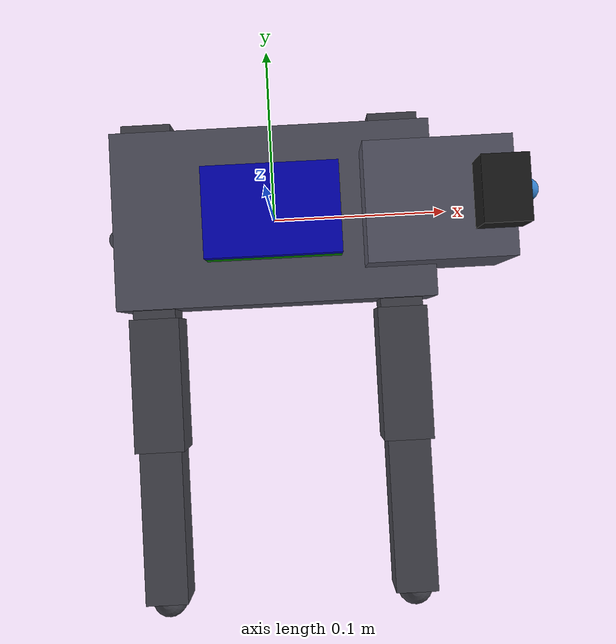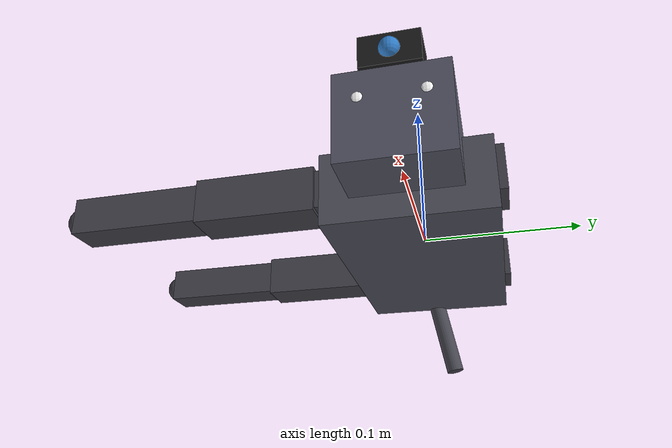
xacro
<?xml version="1.0"?>
<robot name="pidog" xmlns:xacro="http://www.ros.org/wiki/xacro" xmlns:gazebo="http://gazebosim.org/schemas/gazebo">

  <!-- ==================== Constants ==================== -->
  <!-- Body dimensions (based on actual PiDog) -->
  <xacro:property name="body_length" value="0.18" />
  <xacro:property name="body_width" value="0.10" />
  <xacro:property name="body_height" value="0.045" />
  <xacro:property name="body_mass" value="0.75" />

  <!-- Leg dimensions -->
  <xacro:property name="upper_leg_length" value="0.075" />
  <xacro:property name="lower_leg_length" value="0.085" />
  <xacro:property name="leg_width" value="0.028" />
  <xacro:property name="leg_mass" value="0.06" />

  <!-- Joint positions (shoulder/hip on body sides) -->
  <xacro:property name="hip_front_offset_x" value="0.07" />
  <xacro:property name="hip_hind_offset_x" value="-0.07" />
  <xacro:property name="hip_offset_y" value="0.055" />
  <xacro:property name="hip_offset_z" value="0.005" />

  <!-- Head dimensions -->
  <xacro:property name="head_length" value="0.08" />
  <xacro:property name="head_width" value="0.065" />
  <xacro:property name="head_height" value="0.055" />
  <xacro:property name="head_mass" value="0.15" />
  <xacro:property name="head_offset_x" value="0.09" />
  <xacro:property name="head_offset_y" value="0.00" />
  <xacro:property name="head_offset_z" value="0.02" />

  <!-- Camera dimensions (mounted above head) -->
  <xacro:property name="camera_length" value="0.025" />
  <xacro:property name="camera_width" value="0.035" />
  <xacro:property name="camera_height" value="0.020" />
  <xacro:property name="camera_mass" value="0.015" />

  <!-- Tail -->
  <xacro:property name="tail_offset_x" value="-0.09" />
  <xacro:property name="tail_offset_y" value="0.00" />
  <xacro:property name="tail_offset_z" value="0.008" />
  <xacro:property name="tail_length" value="0.08" />
  <xacro:property name="tail_mass" value="0.015" />

  <!-- Electronics -->
  <xacro:property name="rpi_length" value="0.075" />
  <xacro:property name="rpi_width" value="0.050" />
  <xacro:property name="rpi_height" value="0.010" />
  <xacro:property name="rpi_mass" value="0.045" />

  <xacro:property name="hat_length" value="0.075" />
  <xacro:property name="hat_width" value="0.050" />
  <xacro:property name="hat_height" value="0.008" />
  <xacro:property name="hat_mass" value="0.022" />

  <!-- Colors -->
  <xacro:property name="body_color" value="0.30 0.30 0.35 1.0" />
  <xacro:property name="leg_color" value="0.25 0.25 0.28 1.0" />
  <xacro:property name="head_color" value="0.32 0.32 0.38 1.0" />
  <xacro:property name="camera_color" value="0.1 0.1 0.1 1.0" />
  <xacro:property name="rpi_color" value="0.0 0.5 0.0 1.0" />
  <xacro:property name="hat_color" value="0.0 0.0 0.7 1.0" />
  <xacro:property name="tail_color" value="0.28 0.28 0.32 1.0" />
  <xacro:property name="eye_color" value="1.0 1.0 1.0 1.0" />

  <!-- Materials -->
  <material name="body_material"><color rgba="${body_color}" /></material>
  <material name="leg_material"><color rgba="${leg_color}" /></material>
  <material name="head_material"><color rgba="${head_color}" /></material>
  <material name="camera_material"><color rgba="${camera_color}" /></material>
  <material name="rpi_material"><color rgba="${rpi_color}" /></material>
  <material name="hat_material"><color rgba="${hat_color}" /></material>
  <material name="tail_material"><color rgba="${tail_color}" /></material>
  <material name="eye_material"><color rgba="${eye_color}" /></material>
  <material name="lens_material"><color rgba="0.2 0.5 0.8 1.0" /></material>

  <!-- ==================== Gazebo Extensions ==================== -->
  <gazebo>
    <plugin name="gazebo_ros_control" filename="libgazebo_ros_control.so">
      <robotNamespace>/pidog</robotNamespace>
      <controlPeriod>0.01</controlPeriod>
    </plugin>
    <static>false</static>
  </gazebo>

  <!-- ==================== Base Link (Body) ==================== -->
  <link name="base_link">
    <visual>
      <geometry><box size="${body_length} ${body_width} ${body_height}" /></geometry>
      <origin xyz="0 0 0" />
      <material name="body_material" />
    </visual>
    <collision>
      <geometry><box size="${body_length} ${body_width} ${body_height}" /></geometry>
      <origin xyz="0 0 0" />
    </collision>
    <inertial>
      <mass value="${body_mass}" />
      <origin xyz="0 0 0" />
      <inertia ixx="0.008" ixy="0" ixz="0" iyy="0.008" iyz="0" izz="0.005" />
    </inertial>
  </link>

  <gazebo reference="base_link">
    <material>Gazebo/DarkGrey</material>
    <mu1>0.4</mu1>
    <mu2>0.4</mu2>
  </gazebo>

  <!-- ==================== Raspberry Pi (on top of body) ==================== -->
  <joint name="rpi_joint" type="fixed">
    <origin xyz="0 0 ${body_height/2 + rpi_height/2}" rpy="0 0 0" />
    <parent link="base_link" />
    <child link="rpi_link" />
  </joint>

  <link name="rpi_link">
    <visual>
      <geometry><box size="${rpi_length} ${rpi_width} ${rpi_height}" /></geometry>
      <origin xyz="0 0 0" />
      <material name="rpi_material" />
    </visual>
    <collision>
      <geometry><box size="${rpi_length} ${rpi_width} ${rpi_height}" /></geometry>
      <origin xyz="0 0 0" />
    </collision>
    <inertial>
      <mass value="${rpi_mass}" />
      <origin xyz="0 0 0" />
      <inertia ixx="0.00004" ixy="0" ixz="0" iyy="0.00004" iyz="0" izz="0.00004" />
    </inertial>
  </link>

  <!-- ==================== Robot HAT (above Pi) ==================== -->
  <joint name="hat_joint" type="fixed">
    <origin xyz="0 0 ${body_height/2 + rpi_height + hat_height/2}" rpy="0 0 0" />
    <parent link="base_link" />
    <child link="hat_link" />
  </joint>

  <link name="hat_link">
    <visual>
      <geometry><box size="${hat_length} ${hat_width} ${hat_height}" /></geometry>
      <origin xyz="0 0 0" />
      <material name="hat_material" />
    </visual>
    <collision>
      <geometry><box size="${hat_length} ${hat_width} ${hat_height}" /></geometry>
      <origin xyz="0 0 0" />
    </collision>
    <inertial>
      <mass value="${hat_mass}" />
      <origin xyz="0 0 0" />
      <inertia ixx="0.000025" ixy="0" ixz="0" iyy="0.000025" iyz="0" izz="0.000025" />
    </inertial>
  </link>

  <!-- ==================== Head Assembly ==================== -->
  <!-- Head yaw (left/right) -->
  <joint name="head_yaw_joint" type="revolute">
    <origin xyz="${head_offset_x} ${head_offset_y} ${head_offset_z}" rpy="0 0 0" />
    <parent link="base_link" />
    <child link="head_pitch_link" />
    <axis xyz="0 0 1" />
    <limit lower="-1.2" upper="1.2" effort="1.5" velocity="2.5" />
    <dynamics damping="0.08" friction="0.04" />
  </joint>

  <link name="head_pitch_link">
    <inertial>
      <mass value="0.01" />
      <origin xyz="0 0 0" />
      <inertia ixx="0.00001" ixy="0" ixz="0" iyy="0.00001" iyz="0" izz="0.00001" />
    </inertial>
  </link>

  <!-- Head pitch (up/down) -->
  <joint name="head_pitch_joint" type="revolute">
    <origin xyz="0 0 0" rpy="0 0 0" />
    <parent link="head_pitch_link" />
    <child link="head_link" />
    <axis xyz="0 1 0" />
    <limit lower="-0.6" upper="0.8" effort="1.5" velocity="2.5" />
    <dynamics damping="0.08" friction="0.04" />
  </joint>

  <!-- Main head -->
  <link name="head_link">
    <visual>
      <geometry><box size="${head_length} ${head_width} ${head_height}" /></geometry>
      <origin xyz="0 0 0" />
      <material name="head_material" />
    </visual>
    <!-- Eyes -->
    <visual name="left_eye">
      <geometry><sphere radius="0.006" /></geometry>
      <origin xyz="${head_length/2 - 0.005} ${head_width/3.5} ${head_height/5}" />
      <material name="eye_material" />
    </visual>
    <visual name="right_eye">
      <geometry><sphere radius="0.006" /></geometry>
      <origin xyz="${head_length/2 - 0.005} -${head_width/3.5} ${head_height/5}" />
      <material name="eye_material" />
    </visual>
    <collision>
      <geometry><box size="${head_length} ${head_width} ${head_height}" /></geometry>
      <origin xyz="0 0 0" />
    </collision>
    <inertial>
      <mass value="${head_mass}" />
      <origin xyz="0 0 0" />
      <inertia ixx="0.0005" ixy="0" ixz="0" iyy="0.0005" iyz="0" izz="0.0005" />
    </inertial>
  </link>

  <!-- ==================== Camera (on top of head) ==================== -->
  <joint name="camera_joint" type="fixed">
    <origin xyz="${head_length/2 - 0.01} 0 ${head_height/2 + camera_height/2}" rpy="0 0 0" />
    <parent link="head_link" />
    <child link="camera_link" />
  </joint>

  <link name="camera_link">
    <visual>
      <geometry><box size="${camera_length} ${camera_width} ${camera_height}" /></geometry>
      <origin xyz="0 0 0" />
      <material name="camera_material" />
    </visual>
    <!-- Camera lens -->
    <visual name="lens">
      <geometry><sphere radius="0.006" /></geometry>
      <origin xyz="${camera_length/2} 0 0" />
      <material name="lens_material" />
    </visual>
    <collision>
      <geometry><box size="${camera_length} ${camera_width} ${camera_height}" /></geometry>
      <origin xyz="0 0 0" />
    </collision>
    <inertial>
      <mass value="${camera_mass}" />
      <origin xyz="0 0 0" />
      <inertia ixx="0.000005" ixy="0" ixz="0" iyy="0.000005" iyz="0" izz="0.000005" />
    </inertial>
  </link>

  <!-- ==================== Tail ==================== -->
  <joint name="tail_joint" type="revolute">
    <origin xyz="${tail_offset_x} ${tail_offset_y} ${tail_offset_z}" rpy="0 0 0" />
    <parent link="base_link" />
    <child link="tail_link" />
    <axis xyz="0 0 1" />
    <limit lower="-1.0" upper="1.0" effort="0.6" velocity="3.0" />
    <dynamics damping="0.05" friction="0.03" />
  </joint>

  <link name="tail_link">
    <visual>
      <geometry><cylinder radius="0.006" length="${tail_length}" /></geometry>
      <origin xyz="0 0 -${tail_length/2}" rpy="0.2 0 0" />
      <material name="tail_material" />
    </visual>
    <collision>
      <geometry><cylinder radius="0.006" length="${tail_length}" /></geometry>
      <origin xyz="0 0 -${tail_length/2}" rpy="0.2 0 0" />
    </collision>
    <inertial>
      <mass value="${tail_mass}" />
      <origin xyz="0 0 -${tail_length/2}" />
      <inertia ixx="0.00003" ixy="0" ixz="0" iyy="0.00003" iyz="0" izz="0.000008" />
    </inertial>
  </link>

  <!-- ==================== Leg Macro ==================== -->
  <xacro:macro name="leg" params="prefix side x_offset y_offset z_offset">
    <!-- Hip joint -->
    <joint name="${prefix}_hip_joint" type="revolute">
      <origin xyz="${x_offset} ${y_offset} ${z_offset}" rpy="0 0 0" />
      <parent link="base_link" />
      <child link="${prefix}_upper_leg" />
      <axis xyz="0 1 0" />
      <limit lower="-1.2" upper="1.2" effort="2.0" velocity="3.0" />
      <dynamics damping="0.1" friction="0.05" />
    </joint>

    <link name="${prefix}_upper_leg">
      <visual>
        <geometry><box size="${leg_width} ${upper_leg_length} ${leg_width}" /></geometry>
        <origin xyz="0 -${upper_leg_length/2} 0" />
        <material name="leg_material" />
      </visual>
      <collision>
        <geometry><box size="${leg_width} ${upper_leg_length} ${leg_width}" /></geometry>
        <origin xyz="0 -${upper_leg_length/2} 0" />
      </collision>
      <inertial>
        <mass value="${leg_mass}" />
        <origin xyz="0 -${upper_leg_length/2} 0" />
        <inertia ixx="0.00008" ixy="0" ixz="0" iyy="0.00035" iyz="0" izz="0.00008" />
      </inertial>
    </link>

    <!-- Knee joint -->
    <joint name="${prefix}_knee_joint" type="revolute">
      <origin xyz="0 -${upper_leg_length} 0" rpy="0 0 0" />
      <parent link="${prefix}_upper_leg" />
      <child link="${prefix}_lower_leg" />
      <axis xyz="0 1 0" />
      <limit lower="-1.6" upper="0.1" effort="1.5" velocity="3.0" />
      <dynamics damping="0.1" friction="0.05" />
    </joint>

    <link name="${prefix}_lower_leg">
      <visual>
        <geometry><box size="${leg_width*0.85} ${lower_leg_length} ${leg_width*0.85}" /></geometry>
        <origin xyz="0 -${lower_leg_length/2} 0" />
        <material name="leg_material" />
      </visual>
      <collision>
        <geometry><box size="${leg_width*0.85} ${lower_leg_length} ${leg_width*0.85}" /></geometry>
        <origin xyz="0 -${lower_leg_length/2} 0" />
      </collision>
      <inertial>
        <mass value="${leg_mass*0.7}" />
        <origin xyz="0 -${lower_leg_length/2} 0" />
        <inertia ixx="0.00006" ixy="0" ixz="0" iyy="0.00025" iyz="0" izz="0.00006" />
      </inertial>
    </link>

    <!-- Foot -->
    <joint name="${prefix}_foot_joint" type="fixed">
      <origin xyz="0 -${lower_leg_length} 0" rpy="0 0 0" />
      <parent link="${prefix}_lower_leg" />
      <child link="${prefix}_foot" />
    </joint>

    <link name="${prefix}_foot">
      <visual>
        <geometry><sphere radius="0.010" /></geometry>
        <material name="leg_material" />
      </visual>
      <collision>
        <geometry><sphere radius="0.010" /></geometry>
      </collision>
      <inertial>
        <mass value="0.008" />
        <origin xyz="0 0 0" />
        <inertia ixx="0.000004" ixy="0" ixz="0" iyy="0.000004" iyz="0" izz="0.000004" />
      </inertial>
    </link>

    <gazebo reference="${prefix}_foot">
      <material>Gazebo/Black</material>
      <mu1>0.7</mu1>
      <mu2>0.7</mu2>
      <restitution>0.5</restitution>
      <rolling_friction>0.001</rolling_friction>
    </gazebo>
  </xacro:macro>

  <!-- ==================== Instantiate Legs (Two per side) ==================== -->
  <!-- Front Left -->
  <xacro:leg prefix="front_left" side="left"
             x_offset="${hip_front_offset_x}"
             y_offset="${hip_offset_y}"
             z_offset="${hip_offset_z}" />

  <!-- Front Right -->
  <xacro:leg prefix="front_right" side="right"
             x_offset="${hip_front_offset_x}"
             y_offset="-${hip_offset_y}"
             z_offset="${hip_offset_z}" />

  <!-- Hind Left -->
  <xacro:leg prefix="hind_left" side="left"
             x_offset="${hip_hind_offset_x}"
             y_offset="${hip_offset_y}"
             z_offset="${hip_offset_z}" />

  <!-- Hind Right -->
  <xacro:leg prefix="hind_right" side="right"
             x_offset="${hip_hind_offset_x}"
             y_offset="-${hip_offset_y}"
             z_offset="${hip_offset_z}" />

  <!-- ==================== Camera Sensor Plugin (Gazebo) ==================== -->
  <gazebo reference="camera_link">
    <sensor name="camera" type="camera">
      <always_on>true</always_on>
      <update_rate>30</update_rate>
      <visualize>true</visualize>
      <camera>
        <horizontal_fov>1.047</horizontal_fov>
        <image>
          <width>640</width>
          <height>480</height>
          <format>R8G8B8</format>
        </image>
        <clip>
          <near>0.05</near>
          <far>10.0</far>
        </clip>
      </camera>
      <plugin name="camera_controller" filename="libgazebo_ros_camera.so">
        <ros>
          <namespace>/pidog</namespace>
          <argument>camera/image_raw</argument>
        </ros>
      </plugin>
    </sensor>
  </gazebo>

  <!-- ==================== IMU Sensor ==================== -->
  <gazebo reference="base_link">
    <sensor name="imu" type="imu">
      <always_on>true</always_on>
      <update_rate>100</update_rate>
      <plugin name="imu_controller" filename="libgazebo_ros_imu_sensor.so">
        <ros>
          <namespace>/pidog</namespace>
          <argument>/imu/data</argument>
        </ros>
      </plugin>
    </sensor>
  </gazebo>

  <!-- ==================== World/Odom Links (Fixes KDL warning) ==================== -->
  <link name="world"/>
  <link name="odom"/>

  <joint name="world_odom_joint" type="fixed">
    <parent link="world"/>
    <child link="odom"/>
    <origin xyz="0 0 0" rpy="0 0 0"/>
  </joint>

  <joint name="odom_base_joint" type="fixed">
    <parent link="odom"/>
    <child link="base_link"/>
    <origin xyz="0 0 0" rpy="0 0 0"/>
  </joint>

</robot>
